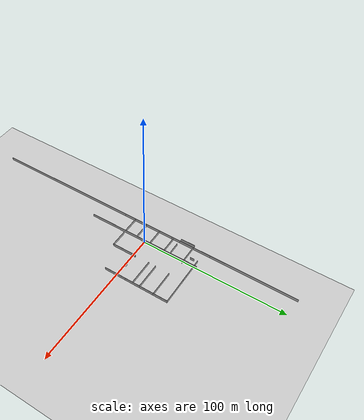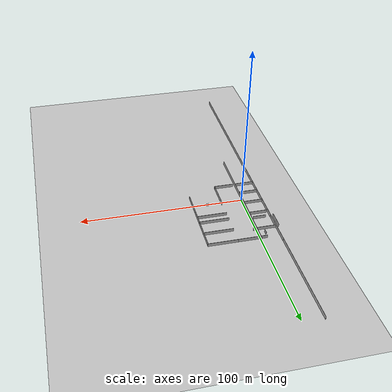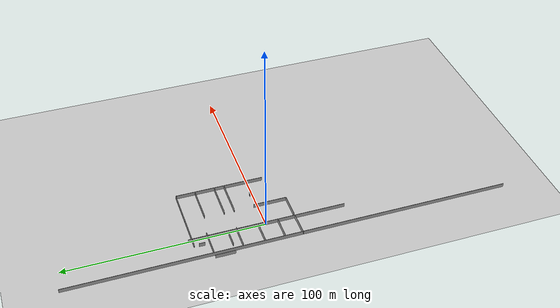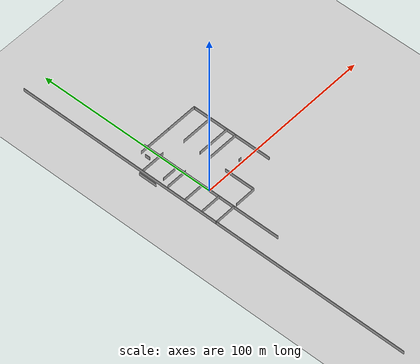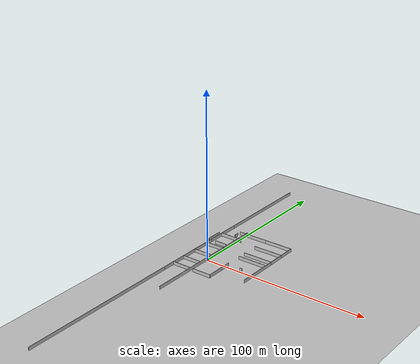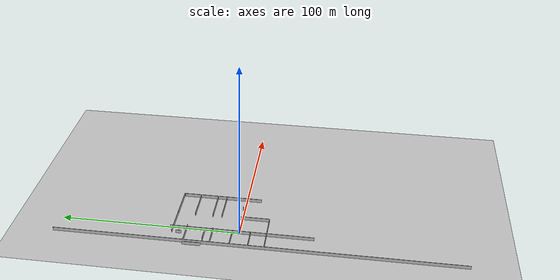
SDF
<sdf version="1.6">
 <world name="default">
  <physics name="default_physics" default="0" type="ode">
   <ode>
    <solver>
     <type>quick</type>
     <iters>20</iters>
     <sor>1</sor>
     <use_dynamic_moi_rescaling>0</use_dynamic_moi_rescaling>
    </solver>
    <constraints>
     <cfm>0</cfm>
     <erp>0.2</erp>
     <contact_max_correcting_vel>100</contact_max_correcting_vel>
     <contact_surface_layer>0</contact_surface_layer>
    </constraints>
   </ode>
   <real_time_update_rate>1000</real_time_update_rate>
   <max_step_size>0.001</max_step_size>
   <real_time_factor>1</real_time_factor>
  </physics>
  <light name="sun" type="directional">
   <pose>0 0 10 0 -0 0</pose>
   <diffuse>0.8 0.8 0.8 1</diffuse>
   <specular>0.2 0.2 0.2 1</specular>
   <attenuation>
    <range>1000</range>
    <constant>0.9</constant>
    <linear>0.01</linear>
    <quadratic>0.001</quadratic>
   </attenuation>
   <direction>-0.5 0.1 -0.9</direction>
  </light>
  <model name="ground_plane">
   <static>1</static>
   <link name="link">
    <collision name="collision">
     <geometry><plane><normal>0 0 1</normal><size>100 100</size></plane></geometry>
     <surface>
      <contact><collide_bitmask>65535</collide_bitmask></contact>
      <friction><ode><mu>100</mu><mu2>50</mu2></ode></friction>
     </surface>
    </collision>
    <visual name="visual">
     <cast_shadows>0</cast_shadows>
     <geometry><plane><normal>0 0 1</normal><size>100 100</size></plane></geometry>
     <material>
      <script><uri>file://media/materials/scripts/gazebo.material</uri><name>Gazebo/Grey</name></script>
     </material>
    </visual>
   </link>
  </model>
  <model name="wall_1_model">
   <pose>7.30244 -14.8716 1 0 -0 0</pose>
   <static>1</static>
   <link name="wall_1_body">
    <inertial>
     <mass>1</mass>
     <inertia><ixx>1</ixx><ixy>0</ixy><ixz>0</ixz><iyy>1</iyy><iyz>0</iyz><izz>1</izz></inertia>
    </inertial>
    <collision name="collision"><geometry><box><size>12 0.2 2</size></box></geometry></collision>
    <visual name="visual"><geometry><box><size>12 0.2 2</size></box></geometry></visual>
   </link>
  </model>
  <model name="wall_3_model">
   <pose>13.1829 -6.46112 1 0 -0 0</pose>
   <static>1</static>
   <link name="wall_3_body">
    <inertial>
     <mass>1</mass>
     <inertia><ixx>1</ixx><ixy>0</ixy><ixz>0</ixz><iyy>1</iyy><iyz>0</iyz><izz>1</izz></inertia>
    </inertial>
    <collision name="collision"><geometry><box><size>0.2 17 2</size></box></geometry></collision>
    <visual name="visual"><geometry><box><size>0.2 17 2</size></box></geometry></visual>
   </link>
  </model>
  <gravity>0 0 -9.81</gravity>
  <magnetic_field>6e-06 2.3e-05 -4.2e-05</magnetic_field>
  <atmosphere type="adiabatic"/>
  <scene><ambient>0.4 0.4 0.4 1</ambient><background>0.7 0.7 0.7 1</background><shadows>1</shadows></scene>
  <spherical_coordinates>
   <surface_model>EARTH_WGS84</surface_model>
   <latitude_deg>0</latitude_deg>
   <longitude_deg>0</longitude_deg>
   <elevation>0</elevation>
   <heading_deg>0</heading_deg>
  </spherical_coordinates>
  <model name="wall_1_model_clone">
   <pose>-6.23538 -14.8832 1 0 -0 0</pose>
   <static>1</static>
   <link name="wall_1_body">
    <inertial>
     <mass>1</mass>
     <inertia><ixx>1</ixx><ixy>0</ixy><ixz>0</ixz><iyy>1</iyy><iyz>0</iyz><izz>1</izz></inertia>
    </inertial>
    <collision name="collision"><geometry><box><size>12 0.2 2</size></box></geometry></collision>
    <visual name="visual"><geometry><box><size>12 0.2 2</size></box></geometry></visual>
   </link>
  </model>
  <model name="wall_3_model_clone">
   <pose>-12.1081 -10.4351 1 0 -0 0</pose>
   <static>1</static>
   <link name="wall_3_body">
    <inertial>
     <mass>1</mass>
     <inertia><ixx>1</ixx><ixy>0</ixy><ixz>0</ixz><iyy>1</iyy><iyz>0</iyz><izz>1</izz></inertia>
    </inertial>
    <collision name="collision"><geometry><box><size>0.2 224.512 2</size></box></geometry></collision>
    <visual name="visual"><geometry><box><size>0.2 224.512 2</size></box></geometry></visual>
   </link>
  </model>
  <model name="wall_1_model_clone_clone">
   <pose>-6.18905 -6.06648 1 0 -0 0</pose>
   <static>1</static>
   <link name="wall_1_body">
    <inertial>
     <mass>1</mass>
     <inertia><ixx>1</ixx><ixy>0</ixy><ixz>0</ixz><iyy>1</iyy><iyz>0</iyz><izz>1</izz></inertia>
    </inertial>
    <collision name="collision"><geometry><box><size>12 0.2 2</size></box></geometry></collision>
    <visual name="visual"><geometry><box><size>12 0.2 2</size></box></geometry></visual>
   </link>
  </model>
  <model name="wall_1_model_clone_clone_clone">
   <pose>-6.18316 3.9282 1 0 -0 0</pose>
   <static>1</static>
   <link name="wall_1_body">
    <inertial>
     <mass>1</mass>
     <inertia><ixx>1</ixx><ixy>0</ixy><ixz>0</ixz><iyy>1</iyy><iyz>0</iyz><izz>1</izz></inertia>
    </inertial>
    <collision name="collision"><geometry><box><size>12 0.2 2</size></box></geometry></collision>
    <visual name="visual"><geometry><box><size>12 0.2 2</size></box></geometry></visual>
   </link>
  </model>
  <model name="wall_4_model_clone">
   <pose>-12.0927 9.37261 1 0 -0 0</pose>
   <static>1</static>
   <link name="wall_4_body">
    <inertial>
     <mass>1</mass>
     <inertia><ixx>1</ixx><ixy>0</ixy><ixz>0</ixz><iyy>1</iyy><iyz>0</iyz><izz>1</izz></inertia>
    </inertial>
    <collision name="collision"><geometry><box><size>0.2 64.2949 2</size></box></geometry></collision>
    <visual name="visual"><geometry><box><size>0.2 64.2949 2</size></box></geometry></visual>
   </link>
  </model>
  <model name="wall_1_model_clone_clone_clone_clone">
   <pose>-5.22519 14.7125 1 0 -0 0</pose>
   <static>1</static>
   <link name="wall_1_body">
    <inertial>
     <mass>1</mass>
     <inertia><ixx>1</ixx><ixy>0</ixy><ixz>0</ixz><iyy>1</iyy><iyz>0</iyz><izz>1</izz></inertia>
    </inertial>
    <collision name="collision"><geometry><box><size>12 0.2 2</size></box></geometry></collision>
    <visual name="visual"><geometry><box><size>12 0.2 2</size></box></geometry></visual>
   </link>
  </model>
  <model name="wall_1_model_clone_clone_clone_clone_0">
   <pose>22.1772 1.22182 1 0 -0 0</pose>
   <static>1</static>
   <link name="wall_1_body">
    <inertial>
     <mass>1</mass>
     <inertia><ixx>1</ixx><ixy>0</ixy><ixz>0</ixz><iyy>1</iyy><iyz>0</iyz><izz>1</izz></inertia>
    </inertial>
    <collision name="collision"><geometry><box><size>1.50419 0.2 2</size></box></geometry></collision>
    <visual name="visual"><geometry><box><size>1.50419 0.2 2</size></box></geometry></visual>
   </link>
  </model>
  <model name="wall_4_model_clone_clone">
   <pose>31.2996 7.03342 1 0 -0 0</pose>
   <static>1</static>
   <link name="wall_4_body">
    <inertial>
     <mass>1</mass>
     <inertia><ixx>1</ixx><ixy>0</ixy><ixz>0</ixz><iyy>1</iyy><iyz>0</iyz><izz>1</izz></inertia>
    </inertial>
    <collision name="collision"><geometry><box><size>0.2 0.178276 2</size></box></geometry></collision>
    <visual name="visual"><geometry><box><size>0.2 0.178276 2</size></box></geometry></visual>
   </link>
  </model>
  <model name="wall_1_model_clone_clone_clone_clone_0_clone">
   <pose>22.1725 12.0149 1 0 -0 0</pose>
   <static>1</static>
   <link name="wall_1_body">
    <inertial>
     <mass>1</mass>
     <inertia><ixx>1</ixx><ixy>0</ixy><ixz>0</ixz><iyy>1</iyy><iyz>0</iyz><izz>1</izz></inertia>
    </inertial>
    <collision name="collision"><geometry><box><size>18.211 0.2 2</size></box></geometry></collision>
    <visual name="visual"><geometry><box><size>18.211 0.2 2</size></box></geometry></visual>
   </link>
  </model>
  <model name="wall_1_model_clone_clone_clone_clone_0_clone_clone">
   <pose>22.115 17.1364 1 0 -0 0</pose>
   <static>1</static>
   <link name="wall_1_body">
    <inertial>
     <mass>1</mass>
     <inertia><ixx>1</ixx><ixy>0</ixy><ixz>0</ixz><iyy>1</iyy><iyz>0</iyz><izz>1</izz></inertia>
    </inertial>
    <collision name="collision"><geometry><box><size>18.211 0.2 2</size></box></geometry></collision>
    <visual name="visual"><geometry><box><size>18.211 0.2 2</size></box></geometry></visual>
   </link>
  </model>
  <model name="wall_1_model_clone_clone_clone_clone_0_clone_clone_clone">
   <pose>22.2563 27.0908 1 0 -0 0</pose>
   <static>1</static>
   <link name="wall_1_body">
    <inertial>
     <mass>1</mass>
     <inertia><ixx>1</ixx><ixy>0</ixy><ixz>0</ixz><iyy>1</iyy><iyz>0</iyz><izz>1</izz></inertia>
    </inertial>
    <collision name="collision"><geometry><box><size>18.211 0.2 2</size></box></geometry></collision>
    <visual name="visual"><geometry><box><size>18.211 0.2 2</size></box></geometry></visual>
   </link>
  </model>
  <model name="wall_4_model_clone_clone_clone">
   <pose>31.2923 14.1659 1 0 -0 0</pose>
   <static>1</static>
   <link name="wall_4_body">
    <inertial>
     <mass>1</mass>
     <inertia><ixx>1</ixx><ixy>0</ixy><ixz>0</ixz><iyy>1</iyy><iyz>0</iyz><izz>1</izz></inertia>
    </inertial>
    <collision name="collision"><geometry><box><size>0.2 44.656 2</size></box></geometry></collision>
    <visual name="visual"><geometry><box><size>0.2 44.656 2</size></box></geometry></visual>
   </link>
  </model>
  <model name="wall_4_model_clone_clone_clone_0">
   <pose>31.3057 22.1884 1 0 -0 0</pose>
   <static>1</static>
   <link name="wall_4_body">
    <inertial>
     <mass>1</mass>
     <inertia><ixx>1</ixx><ixy>0</ixy><ixz>0</ixz><iyy>1</iyy><iyz>0</iyz><izz>1</izz></inertia>
    </inertial>
    <collision name="collision"><geometry><box><size>0.2 10.0595 2</size></box></geometry></collision>
    <visual name="visual"><geometry><box><size>0.2 10.0595 2</size></box></geometry></visual>
   </link>
  </model>
  <model name="wall_3_model_clone_clone">
   <pose>-0.270156 -1.04986 1 0 -0 0</pose>
   <static>1</static>
   <link name="wall_3_body">
    <inertial>
     <mass>1</mass>
     <inertia><ixx>1</ixx><ixy>0</ixy><ixz>0</ixz><iyy>1</iyy><iyz>0</iyz><izz>1</izz></inertia>
    </inertial>
    <collision name="collision"><geometry><box><size>0.2 79.5441 2</size></box></geometry></collision>
    <visual name="visual"><geometry><box><size>0.2 79.5441 2</size></box></geometry></visual>
   </link>
  </model>
  <model name="wall_4_model_clone_clone_clone_0_clone">
   <pose>31.3143 31.9143 1 0 -0 0</pose>
   <static>1</static>
   <link name="wall_4_body">
    <inertial>
     <mass>1</mass>
     <inertia><ixx>1</ixx><ixy>0</ixy><ixz>0</ixz><iyy>1</iyy><iyz>0</iyz><izz>1</izz></inertia>
    </inertial>
    <collision name="collision"><geometry><box><size>0.2 10.0595 2</size></box></geometry></collision>
    <visual name="visual"><geometry><box><size>0.2 10.0595 2</size></box></geometry></visual>
   </link>
  </model>
  <model name="wall_1_model_clone_clone_clone_clone_0_clone_clone_clone_clone">
   <pose>22.3005 36.939 1 0 -0 0</pose>
   <static>1</static>
   <link name="wall_1_body">
    <inertial>
     <mass>1</mass>
     <inertia><ixx>1</ixx><ixy>0</ixy><ixz>0</ixz><iyy>1</iyy><iyz>0</iyz><izz>1</izz></inertia>
    </inertial>
    <collision name="collision"><geometry><box><size>18.211 0.2 2</size></box></geometry></collision>
    <visual name="visual"><geometry><box><size>18.211 0.2 2</size></box></geometry></visual>
   </link>
  </model>
  <model name="wall_4_model_clone_clone_clone_clone">
   <pose>-12.0911 16.2336 1 0 -0 0</pose>
   <static>1</static>
   <link name="wall_4_body">
    <inertial>
     <mass>1</mass>
     <inertia><ixx>1</ixx><ixy>0</ixy><ixz>0</ixz><iyy>1</iyy><iyz>0</iyz><izz>1</izz></inertia>
    </inertial>
    <collision name="collision"><geometry><box><size>0.2 6.12081 2</size></box></geometry></collision>
    <visual name="visual"><geometry><box><size>0.2 6.12081 2</size></box></geometry></visual>
   </link>
  </model>
  <model name="wall_1_model_clone_clone_clone_clone_clone">
   <pose>-5.30438 19.0912 1 0 -0 0</pose>
   <static>1</static>
   <link name="wall_1_body">
    <inertial>
     <mass>1</mass>
     <inertia><ixx>1</ixx><ixy>0</ixy><ixz>0</ixz><iyy>1</iyy><iyz>0</iyz><izz>1</izz></inertia>
    </inertial>
    <collision name="collision"><geometry><box><size>7.8563 0.2 2</size></box></geometry></collision>
    <visual name="visual"><geometry><box><size>7.8563 0.2 2</size></box></geometry></visual>
   </link>
  </model>
  <model name="wall_4_model_clone_clone_clone_0_clone_0">
   <pose>-13.8885 24.1907 1 0 -0 0</pose>
   <static>1</static>
   <link name="wall_4_body">
    <inertial>
     <mass>1</mass>
     <inertia><ixx>1</ixx><ixy>0</ixy><ixz>0</ixz><iyy>1</iyy><iyz>0</iyz><izz>1</izz></inertia>
    </inertial>
    <collision name="collision"><geometry><box><size>0.2 10.0595 2</size></box></geometry></collision>
    <visual name="visual"><geometry><box><size>0.2 10.0595 2</size></box></geometry></visual>
   </link>
  </model>
  <model name="wall_1_model_clone_clone_clone_clone_clone_clone">
   <pose>-5.10011 29.22 1 0 -0 0</pose>
   <static>1</static>
   <link name="wall_1_body">
    <inertial>
     <mass>1</mass>
     <inertia><ixx>1</ixx><ixy>0</ixy><ixz>0</ixz><iyy>1</iyy><iyz>0</iyz><izz>1</izz></inertia>
    </inertial>
    <collision name="collision"><geometry><box><size>13.8198 0.2 2</size></box></geometry></collision>
    <visual name="visual"><geometry><box><size>13.8198 0.2 2</size></box></geometry></visual>
   </link>
  </model>
  <model name="wall_1_model_clone_clone_clone_clone_0_clone_clone_clone_clone_clone">
   <pose>4.73527 36.9287 1 0 -0 0</pose>
   <static>1</static>
   <link name="wall_1_body">
    <inertial>
     <mass>1</mass>
     <inertia><ixx>1</ixx><ixy>0</ixy><ixz>0</ixz><iyy>1</iyy><iyz>0</iyz><izz>1</izz></inertia>
    </inertial>
    <collision name="collision"><geometry><box><size>18.211 0.2 2</size></box></geometry></collision>
    <visual name="visual"><geometry><box><size>18.211 0.2 2</size></box></geometry></visual>
   </link>
  </model>
  <model name="wall_4_model_clone_clone_clone_clone_clone">
   <pose>-4.3132 33.0954 1 0 -0 0</pose>
   <static>1</static>
   <link name="wall_4_body">
    <inertial>
     <mass>1</mass>
     <inertia><ixx>1</ixx><ixy>0</ixy><ixz>0</ixz><iyy>1</iyy><iyz>0</iyz><izz>1</izz></inertia>
    </inertial>
    <collision name="collision"><geometry><box><size>0.2 2.88948 2</size></box></geometry></collision>
    <visual name="visual"><geometry><box><size>0.2 2.88948 2</size></box></geometry></visual>
   </link>
  </model>
 </world>
</sdf>
